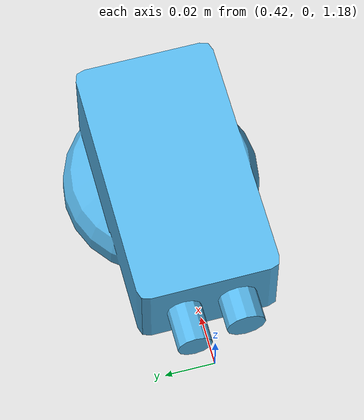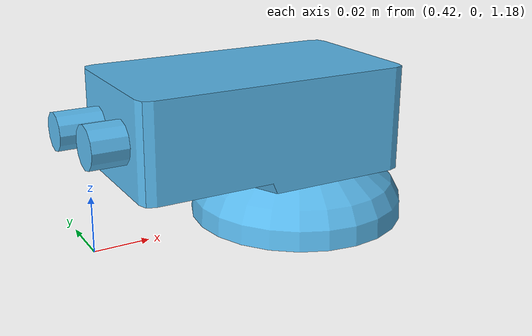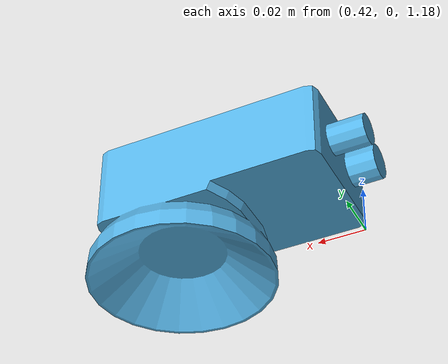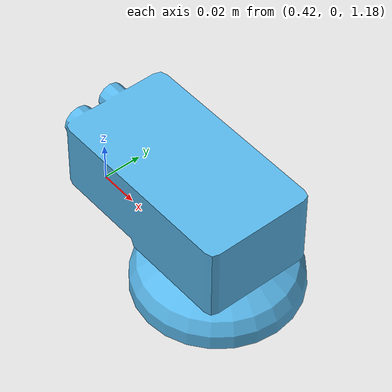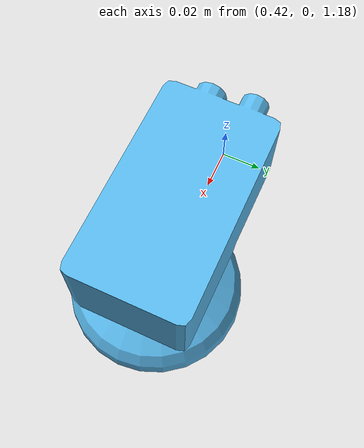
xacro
<?xml version="1.0" ?>
<robot name="omtp"
  xmlns:xacro="http://www.ros.org/wiki/xacro">

  <!-- INITIAL SETUP OF WORLD LINK                          -->
  <!-- world -->
  <link name="world" />

  <!-- Logical camera                                       -->
  <xacro:include filename="$(find logical_camera)/urdf/logical_camera.xacro"/>
  <!-- Must be connected to the world frame, else Gazebo may rotate the entire view -->
  <xacro:logical_camera
    camera_namespace="/omtp"
    camera_name="logical_camera1"
    parent="world"
    origin_xyz="0.5 0.0 1.2"
    origin_rpy="0 1.5708 0"
  />

</robot>

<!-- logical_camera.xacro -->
<robot xmlns:xacro="http://www.ros.org/wiki/xacro">
  <xacro:macro name="logical_camera" params="camera_namespace camera_name parent origin_xyz origin_rpy">
    <!-- Logical camera joint -->
    <joint name="${camera_name}_joint" type="fixed">
      <origin xyz="${origin_xyz}" rpy="${origin_rpy}"/>
      <parent link="${parent}"/>
      <child link="${camera_name}_link"/>
    </joint>

    <!-- Logical camera link -->
    <link name="${camera_name}_link">
      <gravity>false</gravity>
      <inertial>
        <mass value="0.1"/>
        <inertia ixx="0.000166667" ixy="0" ixz="0" iyy="0.000166667" iyz="0" izz="0.000166667"/>
      </inertial>
      <visual>
        <origin xyz="0 0 -0.02" rpy="0 0 -1.5708"/> <!-- Adjust pose here -->
        <geometry>
          <mesh filename="package://logical_camera/models/logical_camera/meshes/camera.dae"/>
        </geometry>
      </visual>
      <collision>
        <origin xyz="0 0 -0.02" rpy="0 0 -1.5708"/> <!-- Adjust pose here -->
        <geometry>
          <mesh filename="package://logical_camera/models/logical_camera/meshes/camera.dae"/>
        </geometry>
      </collision>

    </link>

    <!-- Logical camera sensor -->
    <gazebo reference="${camera_name}_link">
      <sensor name="${camera_name}" type="logical_camera">
        <logical_camera>
          <near>0.2</near>
          <far>1.2</far>
          <horizontal_fov>1.1</horizontal_fov>
          <aspect_ratio>1.5</aspect_ratio>
        </logical_camera>

        <!-- Visualize the camera's frustum in Gazebo -->
        <visualize>true</visualize>
        <always_on>true</always_on>
        <update_rate>10</update_rate>
      </sensor>
    </gazebo>

    <gazebo>
      <plugin name="${camera_name}_controller" filename="libROSLogicalCameraPlugin.so">
        <!-- Namespace for the camera node topic e.g. /omtp -->
        <robotNamespace>${camera_namespace}</robotNamespace>
        <!-- ROS topic for the camera image e.g. /omtp/logical_camera1 -->
        <image_topic_ros>${camera_name}</image_topic_ros>
      </plugin>
    </gazebo>

  </xacro:macro>
</robot>
